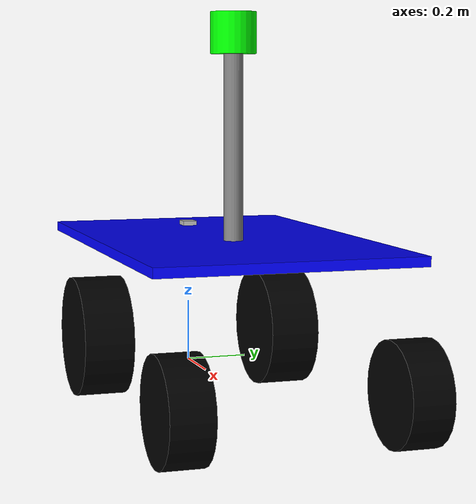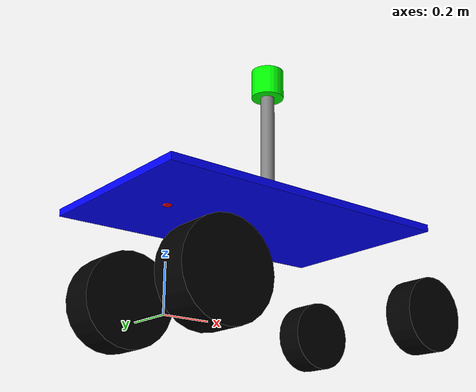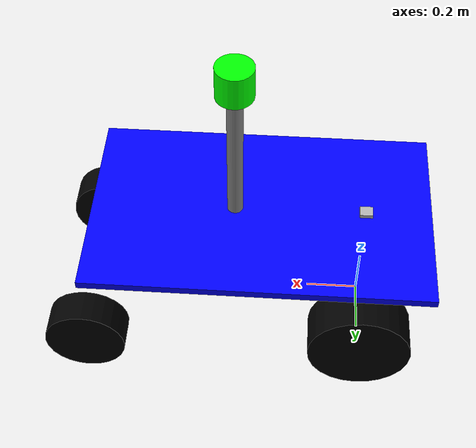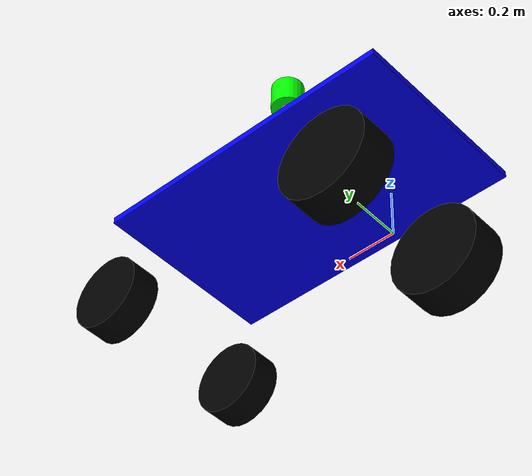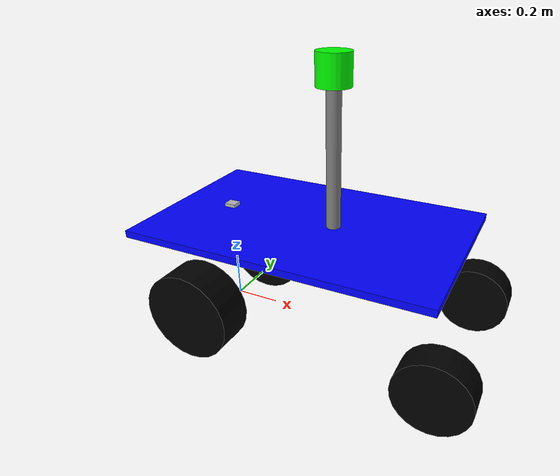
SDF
<?xml version='1.0'?>
<sdf version='1.5'>
    <model name="BLUE">
        <static>false</static>

        <link name='Base'>
            <pose>.40 0 .445 0 0 0</pose>
            <collision name='collision'>
                <geometry>
                    <box>
                        <size>1.300 .800 .030</size>
                    </box>
                </geometry>
            </collision>
            <visual name='visual'>
                <geometry>
                    <box>
                        <size>1.300 .800 .030</size>
                    </box>
		</geometry>
		<material>
			<ambient>0 0 1 1</ambient>
			<diffuse>0 0 1 1</diffuse>
			<specular>0 0 0 0</specular>
			<emissive>0 0 0 0</emissive>
		</material>
            </visual>
        </link>

        <link name='Pole'>
            <pose>.50 0 .760 0 0 0</pose>
            <collision name='collision'>
                <geometry>
                    <cylinder>
                        <radius>.030</radius>
                        <length>.600</length>
                    </cylinder>
                </geometry>
            </collision>
            <visual name='visual'>
                <geometry>
                    <cylinder>
                        <radius>.030</radius>
                        <length>.600</length>
                    </cylinder>
                </geometry>
		<material>
			<ambient>.5 .5 .5 1</ambient>
			<diffuse>.5 .5 .5 1</diffuse>
			<specular>0 0 0 0</specular>
			<emissive>0 0 0 0</emissive>
		</material>
            </visual>
        </link>

        <link name='Velodyne'>
            <pose>.50 0 1.090 0 0 0</pose>
            <collision name='collision'>
                <geometry>
                    <cylinder>
                        <radius>.070</radius>
                        <length>.1260</length>
                    </cylinder>
                </geometry>
            </collision>
            <visual name='visual'>
                <geometry>
                    <cylinder>
                        <radius>.070</radius>
                        <length>.1260</length>
                    </cylinder>
                </geometry>
		<material>
			<ambient>0 1 0 1</ambient>
			<diffuse>0 1 0 1</diffuse>
			<specular>0 0 0 0</specular>
			<emissive>0 0 0 0</emissive>
		</material>
            </visual>
        </link>

        <link name='GNSSRover'>
            <pose>0 0 .4675 0 0 0</pose>
            <collision name='collision'>
                <geometry>
		<material>
			<ambient>0 0 0 1</ambient>
			<diffuse>0 0 0 1</diffuse>
			<specular>0 0 0 0</specular>
			<emissive>0 0 0 0</emissive>
		</material>
                    <box>
                        <size>.050 .045 .015</size>
                    </box>
                </geometry>
            </collision>
            <visual name='visual'>
                <geometry>
                    <box>
                        <size>.050 .045 .015</size>
                    </box>
                </geometry>
            </visual>
        </link>

        <link name='IMU'>
            <pose>0 0 .42675 0 0 0</pose>
            <collision name='collision'>
                <geometry>
                    <box>
                        <size>.0270 .0260 .0065</size>
                    </box>
                </geometry>
            </collision>
            <visual name='visual'>
                <geometry>
                    <box>
                        <size>.0270 .0260 .0065</size>
                    </box>
                </geometry>
		<material>
			<ambient>1 0 0 1</ambient>
			<diffuse>1 0 0 1</diffuse>
			<specular>0 0 0 0</specular>
			<emissive>0 0 0 0</emissive>
		</material>
            </visual>
        </link>

        <link name="LFWheel">
            <pose>1.06 -.3370 .0775 1.57080 1.57080 0</pose>
            <collision name="collision">
                <geometry>
                    <cylinder>
                        <radius>.1550</radius>
                        <length>.1260</length>
                    </cylinder>
                </geometry>
            </collision>
            <visual name="visual">
                <geometry>
                    <cylinder>
                        <radius>.1550</radius>
                        <length>.1260</length>
                    </cylinder>
                </geometry>
		<material>
			<ambient>0 0 0 1</ambient>
			<diffuse>0 0 0 1</diffuse>
			<specular>0 0 0 0</specular>
			<emissive>0 0 0 0</emissive>
		</material>
            </visual>
        </link>

        <link name="RFWheel">
            <pose>1.06 .3370 .0775 1.57080 1.57080 0</pose>
            <collision name="collision">
                <geometry>
                    <cylinder>
                        <radius>.1550</radius>
                        <length>.1260</length>
                    </cylinder>
                </geometry>
            </collision>
            <visual name="visual">
                <geometry>
                    <cylinder>
                        <radius>.1550</radius>
                        <length>.1260</length>
                    </cylinder>
                </geometry>
		<material>
			<ambient>0 0 0 1</ambient>
			<diffuse>0 0 0 1</diffuse>
			<specular>0 0 0 0</specular>
			<emissive>0 0 0 0</emissive>
		</material>
            </visual>
        </link>

        <link name="LRWheel">
            <pose>0 -.3184 .09875 1.57080 1.57080 0</pose>
            <collision name="collision">
                <geometry>
                    <cylinder>
                        <radius>.1975</radius>
                        <length>.1632</length>
                    </cylinder>
                </geometry>
            </collision>
            <visual name="visual">
                <geometry>
                    <cylinder>
                        <radius>.1975</radius>
                        <length>.1632</length>
                    </cylinder>
                </geometry>
		<material>
			<ambient>0 0 0 1</ambient>
			<diffuse>0 0 0 1</diffuse>
			<specular>0 0 0 0</specular>
			<emissive>0 0 0 0</emissive>
		</material>
            </visual>
        </link>

        <link name="RRWheel">
            <pose>0 .3184 .09875 1.57080 1.57080 0</pose>
            <collision name="collision">
                <geometry>
                    <cylinder>
                        <radius>.1975</radius>
                        <length>.1632</length>
                    </cylinder>
                </geometry>
            </collision>
            <visual name="visual">
                <geometry>
                    <cylinder>
                        <radius>.1975</radius>
                        <length>.1632</length>
                    </cylinder>
                </geometry>
		<material>
			<ambient>0 0 0 1</ambient>
			<diffuse>0 0 0 1</diffuse>
			<specular>0 0 0 0</specular>
			<emissive>0 0 0 0</emissive>
		</material>
            </visual>
        </link>

        <joint type="fixed" name="BasePole">
            <pose>.40 0 .770 0 0 0</pose>
            <child>Pole</child>
            <parent>Base</parent>
            <axis>
                <xyz>0 0 0</xyz>
            </axis>
        </joint>

        <joint type="fixed" name="PoleVelodyne">
            <pose>.40 0 1.100 0 0 0</pose>
            <child>Velodyne</child>
            <parent>Base</parent>
            <axis>
                <xyz>0 0 0</xyz>
            </axis>
        </joint>

        <joint type="fixed" name="BaseGNSSRover">
            <pose>0 0 .0.4675 0 0 0</pose>
            <child>GNSSRover</child>
            <parent>Base</parent>
            <axis>
                <xyz>0 0 0</xyz>
            </axis>
        </joint>

        <joint type="fixed" name="BaseIMU">
            <pose>0 0 .42675 0 0 0</pose>
            <child>IMU</child>
            <parent>Base</parent>
            <axis>
                <xyz>0 0 0</xyz>
            </axis>
        </joint>

        <joint type="revolute" name="LeftFrontWheel">
            <pose>1.06 -.3370 .0775 1.57080 1.57080 0</pose>
            <child>LFWheel</child>
            <parent>Base</parent>
            <axis>
                <xyz>0 1 0</xyz>
            </axis>
        </joint>

        <joint type="revolute" name="RightFrontWheel">
            <pose>1.06 .3370 .0775 1.57080 1.57080 0</pose>
            <child>RFWheel</child>
            <parent>Base</parent>
            <axis>
                <xyz>0 1 0</xyz>
            </axis>
        </joint>

        <joint type="revolute" name="LeftRearWheel">
            <pose>0 -.3184 .09875 1.57080 1.57080 0</pose>
            <child>LRWheel</child>
            <parent>Base</parent>
            <axis>
                <xyz>0 1 0</xyz>
            </axis>
        </joint>

        <joint type="revolute" name="RightRearWheel">
            <pose>0 .3184 .09875 1.57080 1.57080 0</pose>
            <child>RRWheel</child>
            <parent>Base</parent>
            <axis>
                <xyz>0 1 0</xyz>
            </axis>
        </joint>

    </model>
</sdf>
